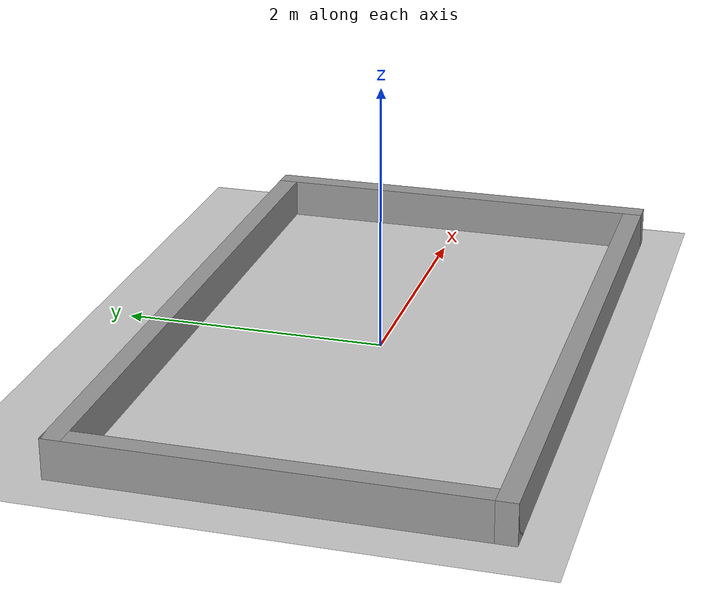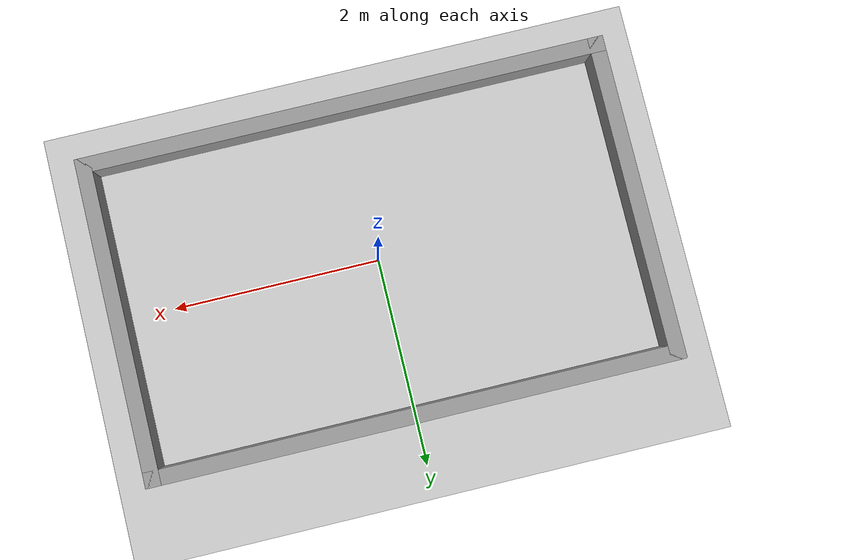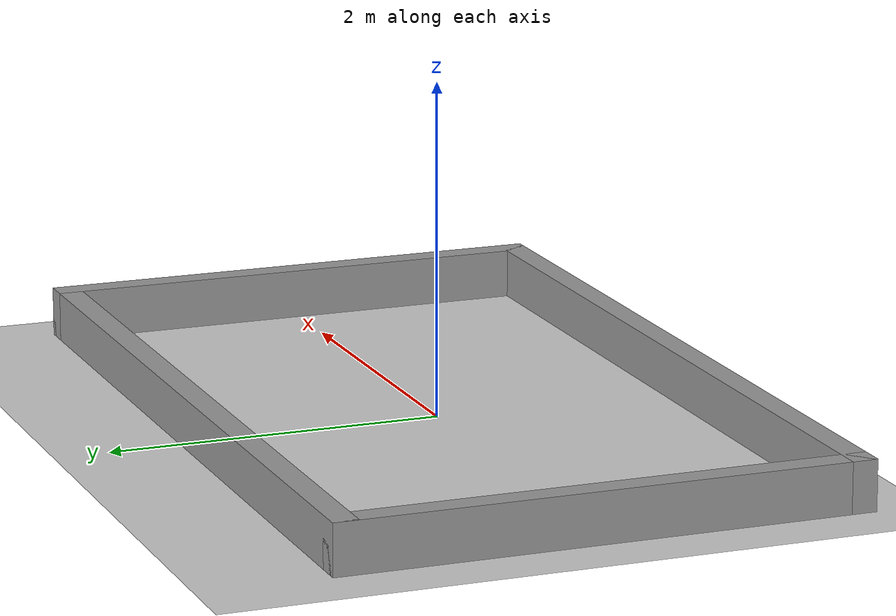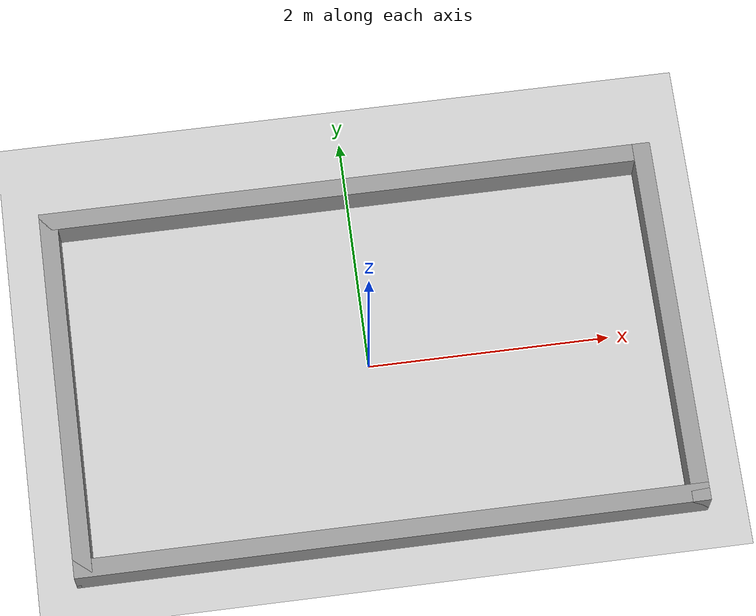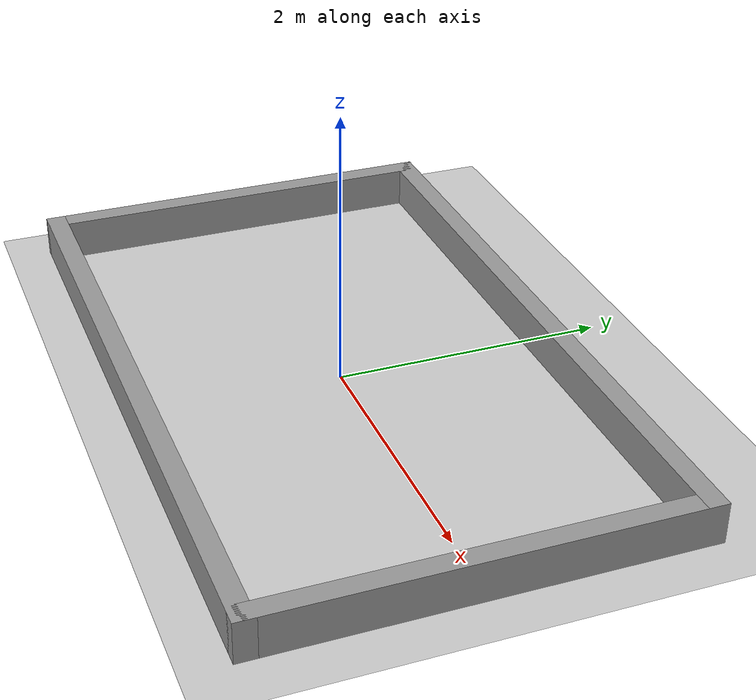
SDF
<sdf version="1.6">
 <world name="default">
  <light name="sun" type="directional">
   <pose>0 0 10 0 -0 0</pose>
   <diffuse>0.8 0.8 0.8 1</diffuse>
   <specular>0.2 0.2 0.2 1</specular>
   <attenuation>
    <range>1000</range>
    <constant>0.9</constant>
    <linear>0.01</linear>
    <quadratic>0.001</quadratic>
   </attenuation>
   <direction>-0.5 0.1 -0.9</direction>
  </light>
  <model name="ground_plane">
   <static>1</static>
   <link name="link">
    <collision name="collision">
     <geometry><plane><normal>0 0 1</normal><size>100 100</size></plane></geometry>
     <surface>
      <contact><collide_bitmask>65535</collide_bitmask></contact>
      <friction><ode><mu>100</mu><mu2>50</mu2></ode></friction>
     </surface>
    </collision>
    <visual name="visual">
     <cast_shadows>0</cast_shadows>
     <geometry><plane><normal>0 0 1</normal><size>100 100</size></plane></geometry>
     <material>
      <script><uri>file://media/materials/scripts/gazebo.material</uri><name>Gazebo/Grey</name></script>
     </material>
    </visual>
   </link>
  </model>
  <gravity>0 0 -9.8</gravity>
  <magnetic_field>6e-06 2.3e-05 -4.2e-05</magnetic_field>
  <atmosphere type="adiabatic"/>
  <physics name="default_physics" default="0" type="ode">
   <max_step_size>0.001</max_step_size>
   <real_time_factor>1</real_time_factor>
   <real_time_update_rate>1000</real_time_update_rate>
  </physics>
  <scene><ambient>0.4 0.4 0.4 1</ambient><background>0.7 0.7 0.7 1</background><shadows>1</shadows></scene>
  <spherical_coordinates>
   <surface_model>EARTH_WGS84</surface_model>
   <latitude_deg>0</latitude_deg>
   <longitude_deg>0</longitude_deg>
   <elevation>0</elevation>
   <heading_deg>0</heading_deg>
  </spherical_coordinates>
  <model name="rect_room">
   <link name="Wall_22">
    <collision name="Wall_22_Collision">
     <geometry><box><size>5.15 0.15 0.3</size></box></geometry>
     <pose>0 0 0.15 0 -0 0</pose>
    </collision>
    <visual name="Wall_22_Visual">
     <pose>0 0 0.15 0 -0 0</pose>
     <geometry><box><size>5.15 0.15 0.3</size></box></geometry>
     <material>
      <script><uri>file://media/materials/scripts/gazebo.material</uri><name>Gazebo/Grey</name></script>
      <ambient>1 1 1 1</ambient>
     </material>
     <meta><layer>0</layer></meta>
    </visual>
    <pose>0 -1.5 0 0 -0 0</pose>
   </link>
   <link name="Wall_24">
    <collision name="Wall_24_Collision">
     <geometry><box><size>3.15 0.15 0.3</size></box></geometry>
     <pose>0 0 0.15 0 -0 0</pose>
    </collision>
    <visual name="Wall_24_Visual">
     <pose>0 0 0.15 0 -0 0</pose>
     <geometry><box><size>3.15 0.15 0.3</size></box></geometry>
     <material>
      <script><uri>file://media/materials/scripts/gazebo.material</uri><name>Gazebo/Grey</name></script>
      <ambient>1 1 1 1</ambient>
     </material>
     <meta><layer>0</layer></meta>
    </visual>
    <pose>-2.5 0 0 0 -0 1.5708</pose>
   </link>
   <link name="Wall_25">
    <collision name="Wall_25_Collision">
     <geometry><box><size>5.15 0.15 0.3</size></box></geometry>
     <pose>0 0 0.15 0 -0 0</pose>
    </collision>
    <visual name="Wall_25_Visual">
     <pose>0 0 0.15 0 -0 0</pose>
     <geometry><box><size>5.15 0.15 0.3</size></box></geometry>
     <material>
      <script><uri>file://media/materials/scripts/gazebo.material</uri><name>Gazebo/Grey</name></script>
      <ambient>1 1 1 1</ambient>
     </material>
     <meta><layer>0</layer></meta>
    </visual>
    <pose>0 1.5 0 0 -0 0</pose>
   </link>
   <link name="Wall_27">
    <collision name="Wall_27_Collision">
     <geometry><box><size>3.15 0.15 0.3</size></box></geometry>
     <pose>0 0 0.15 0 -0 0</pose>
    </collision>
    <visual name="Wall_27_Visual">
     <pose>0 0 0.15 0 -0 0</pose>
     <geometry><box><size>3.15 0.15 0.3</size></box></geometry>
     <material>
      <script><uri>file://media/materials/scripts/gazebo.material</uri><name>Gazebo/Grey</name></script>
      <ambient>1 1 1 1</ambient>
     </material>
     <meta><layer>0</layer></meta>
    </visual>
    <pose>2.5 0 0 0 0 -1.5708</pose>
   </link>
   <static>1</static>
  </model>
 </world>
</sdf>
